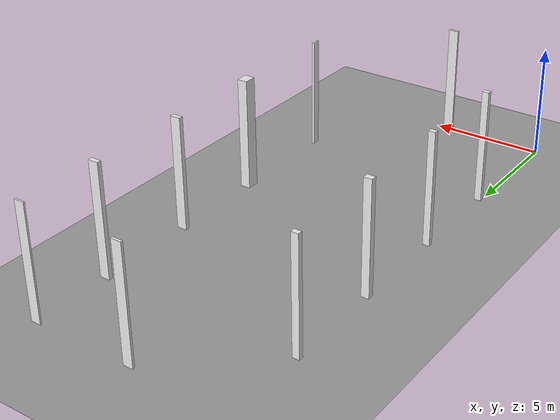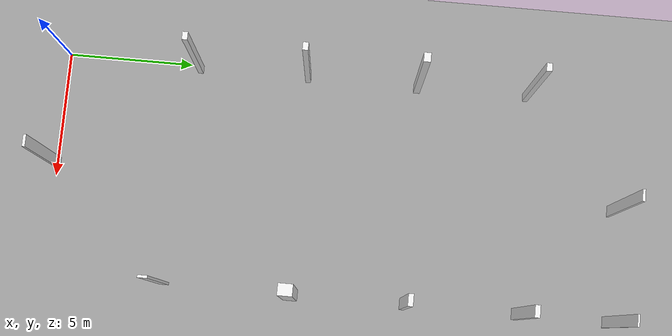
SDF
<sdf version="1.6">
 <world name="default">
  <physics name="default_physics" default="0" type="ode">
   <max_step_size>0.001</max_step_size>
   <real_time_factor>1</real_time_factor>
   <real_time_update_rate>1000.0</real_time_update_rate>
   <ode>
    <solver>
     <type>quick</type>
     <iters>150</iters>
     <sor>1.400000</sor>
     <use_dynamic_moi_rescaling>1</use_dynamic_moi_rescaling>
    </solver>
    <constraints>
     <cfm>0.00001</cfm>
     <erp>0.2</erp>
     <contact_max_correcting_vel>2000.000000</contact_max_correcting_vel>
     <contact_surface_layer>0.01000</contact_surface_layer>
    </constraints>
   </ode>
  </physics>
  <GUI name="default_gri" default="0" type="ode"><grid>45 1.0 0 0.0150</grid></GUI>
  <scene><shadows>true</shadows></scene>
  <light name="sun" type="directional">
   <pose>0 0 10000 0.4 0.2 0</pose>
   <diffuse>1 1 1 1</diffuse>
   <specular>0.6 0.6 0.6 1</specular>
   <direction>0.1 0.1 -0.9</direction>
   <attenuation>
    <range>20</range>
    <constant>0.5</constant>
    <linear>0.01</linear>
    <quadratic>0.001</quadratic>
   </attenuation>
  </light>
  <model name="ground_plane_0">
   <static>1</static>
   <link name="link">
    <collision name="collision">
     <geometry><plane><normal>0 0 1</normal><size>100 100</size></plane></geometry>
     <surface><friction><ode><mu>100</mu><mu2>50</mu2></ode></friction></surface>
    </collision>
    <visual name="visual">
     <cast_shadows>0</cast_shadows>
     <geometry><plane><normal>0 0 1</normal><size>100 100</size></plane></geometry>
     <material>
      <script><uri>file://media/materials/scripts/gazebo.material</uri><name>Gazebo/Grey</name></script>
     </material>
    </visual>
    <velocity_decay><linear>0</linear><angular>0</angular></velocity_decay>
   </link>
   <pose>0.497681 0 0 0 -0 0</pose>
  </model>
  <model name="columns"><include><pose>0 0 2 0 0.0 0</pose><uri>model://columns-laser</uri></include></model>
 </world>
</sdf>

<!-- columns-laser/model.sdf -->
<sdf version="1.6">
    <model name="columns">
        <static>true</static>

        <link name="column_1_hori">
            <pose>4.5 0.055 0.5 0 0 1.5707</pose>
            <static>true</static>
            <inertial>
                <mass>1.0</mass>
                <inertia>
                    <!-- inertias are tricky to compute -->
                    <ixx>1</ixx> <!-- for a box: ixx = 0.083 * mass * (y*y + z*z) -->
                    <ixy>0</ixy> <!-- for a box: ixy = 0 -->
                    <ixz>0</ixz> <!-- for a box: ixz = 0 -->
                    <iyy>1</iyy> <!-- for a box: iyy = 0.083 * mass * (x*x + z*z) -->
                    <iyz>0</iyz> <!-- for a box: iyz = 0 -->
                    <izz>1</izz> <!-- for a box: izz = 0.083 * mass * (x*x + y*y) -->
                </inertia>
            </inertial>
            <collision name="collision">
                <geometry>
                    <box>
                        <size>0.11 0.45 5</size>
                    </box>
                </geometry>
            </collision>
            <visual name="visual">
                <geometry>
                    <box>
                        <size>0.11 0.45 5</size>
                    </box>
                </geometry>
                <material>
                    <script>
                        <uri>file://usr/share/gazebo-11/media/materials/scripts/gazebo.material</uri>
                        <name>Gazebo/White</name>
                    </script>
                </material>
            </visual>
        </link>

        <link name="column_2_verti">
            <pose>8.95 4.82 0.5 0 0 0</pose> <!-- corrigir posicao y -->
            <static>true</static>
            <inertial>
                <mass>1.0</mass>
                <inertia>
                    <!-- inertias are tricky to compute -->
                    <ixx>1</ixx> <!-- for a box: ixx = 0.083 * mass * (y*y + z*z) -->
                    <ixy>0</ixy> <!-- for a box: ixy = 0 -->
                    <ixz>0</ixz> <!-- for a box: ixz = 0 -->
                    <iyy>1</iyy> <!-- for a box: iyy = 0.083 * mass * (x*x + z*z) -->
                    <iyz>0</iyz> <!-- for a box: iyz = 0 -->
                    <izz>1</izz> <!-- for a box: izz = 0.083 * mass * (x*x + y*y) -->
                </inertia>
            </inertial>
            <collision name="collision">
                <geometry>
                    <box>
                        <size>0.1 0.36 5</size>
                    </box>
                </geometry>
            </collision>
            <visual name="visual">
                <geometry>
                    <box>
                        <size>0.1 0.36 5</size>
                    </box>
                </geometry>
                <material>
                    <script>
                        <uri>file://usr/share/gazebo-11/media/materials/scripts/gazebo.material</uri>
                        <name>Gazebo/White</name>
                    </script>
                </material>
            </visual>
        </link>

        <link name="column_3_hori">
            <pose>8.9425 22.25 0.5 0 0 1.5707</pose>
            <static>true</static>
            <inertial>
                <mass>1.0</mass>
                <inertia>
                    <!-- inertias are tricky to compute -->
                    <ixx>1</ixx> <!-- for a box: ixx = 0.083 * mass * (y*y + z*z) -->
                    <ixy>0</ixy> <!-- for a box: ixy = 0 -->
                    <ixz>0</ixz> <!-- for a box: ixz = 0 -->
                    <iyy>1</iyy> <!-- for a box: iyy = 0.083 * mass * (x*x + z*z) -->
                    <iyz>0</iyz> <!-- for a box: iyz = 0 -->
                    <izz>1</izz> <!-- for a box: izz = 0.083 * mass * (x*x + y*y) -->
                </inertia>
            </inertial>
            <collision name="collision">
                <geometry>
                    <box>
                        <size>0.07 0.445 5</size>
                    </box>
                </geometry>
            </collision>
            <visual name="visual">
                <geometry>
                    <box>
                        <size>0.07 0.445 5</size>
                    </box>
                </geometry>
                <material>
                    <script>
                        <uri>file://usr/share/gazebo-11/media/materials/scripts/gazebo.material</uri>
                        <name>Gazebo/White</name>
                    </script>
                </material>
            </visual>
        </link>

        <link name="column_4_hori">
            <pose>4.5225 22.235 0.5 0 0 1.5707</pose>
            <static>true</static>
            <inertial>
                <mass>1.0</mass>
                <inertia>
                    <!-- inertias are tricky to compute -->
                    <ixx>1</ixx> <!-- for a box: ixx = 0.083 * mass * (y*y + z*z) -->
                    <ixy>0</ixy> <!-- for a box: ixy = 0 -->
                    <ixz>0</ixz> <!-- for a box: ixz = 0 -->
                    <iyy>1</iyy> <!-- for a box: iyy = 0.083 * mass * (x*x + z*z) -->
                    <iyz>0</iyz> <!-- for a box: iyz = 0 -->
                    <izz>1</izz> <!-- for a box: izz = 0.083 * mass * (x*x + y*y) -->
                </inertia>
            </inertial>
            <collision name="collision">
                <geometry>
                    <box>
                        <size>0.1 0.435 5</size>
                    </box>
                </geometry>
            </collision>
            <visual name="visual">
                <geometry>
                    <box>
                        <size>0.1 0.435 5</size>
                    </box>
                </geometry>
                <material>
                    <script>
                        <uri>file://usr/share/gazebo-11/media/materials/scripts/gazebo.material</uri>
                        <name>Gazebo/White</name>
                    </script>
                </material>
            </visual>
        </link>

        <link name="column_8_verti">
            <pose>0.15 5.3645 0.5 0 0 0</pose>
            <static>true</static>
            <inertial>
                <mass>1.0</mass>
                <inertia>
                    <!-- inertias are tricky to compute -->
                    <ixx>1</ixx> <!-- for a box: ixx = 0.083 * mass * (y*y + z*z) -->
                    <ixy>0</ixy> <!-- for a box: ixy = 0 -->
                    <ixz>0</ixz> <!-- for a box: ixz = 0 -->
                    <iyy>1</iyy> <!-- for a box: iyy = 0.083 * mass * (x*x + z*z) -->
                    <iyz>0</iyz> <!-- for a box: iyz = 0 -->
                    <izz>1</izz> <!-- for a box: izz = 0.083 * mass * (x*x + y*y) -->
                </inertia>
            </inertial>
            <collision name="collision">
                <geometry>
                    <box>
                        <size>0.3 0.205 5</size>
                    </box>
                </geometry>
            </collision>
            <visual name="visual">
                <geometry>
                    <box>
                        <size>0.3 0.205 5</size>
                    </box>
                </geometry>
                <material>
                    <script>
                        <uri>file://usr/share/gazebo-11/media/materials/scripts/gazebo.material</uri>
                        <name>Gazebo/White</name>
                    </script>
                </material>
            </visual>
        </link>

        <link name="column_7_verti">
            <pose>0.15 9.764 0.5 0 0 0</pose>
            <static>true</static>
            <inertial>
                <mass>1.0</mass>
                <inertia>
                    <!-- inertias are tricky to compute -->
                    <ixx>1</ixx> <!-- for a box: ixx = 0.083 * mass * (y*y + z*z) -->
                    <ixy>0</ixy> <!-- for a box: ixy = 0 -->
                    <ixz>0</ixz> <!-- for a box: ixz = 0 -->
                    <iyy>1</iyy> <!-- for a box: iyy = 0.083 * mass * (x*x + z*z) -->
                    <iyz>0</iyz> <!-- for a box: iyz = 0 -->
                    <izz>1</izz> <!-- for a box: izz = 0.083 * mass * (x*x + y*y) -->
                </inertia>
            </inertial>
            <collision name="collision">
                <geometry>
                    <box>
                        <size>0.3 0.21 5</size>
                    </box>
                </geometry>
            </collision>
            <visual name="visual">
                <geometry>
                    <box>
                        <size>0.3 0.21 5</size>
                    </box>
                </geometry>
                <material>
                    <script>
                        <uri>file://usr/share/gazebo-11/media/materials/scripts/gazebo.material</uri>
                        <name>Gazebo/White</name>
                    </script>
                </material>
            </visual>
        </link>

        <link name="column_6_verti">
            <pose>0.175 14.202 0.5 0 0 0</pose>
            <static>true</static>
            <inertial>
                <mass>1.0</mass>
                <inertia>
                    <!-- inertias are tricky to compute -->
                    <ixx>1</ixx> <!-- for a box: ixx = 0.083 * mass * (y*y + z*z) -->
                    <ixy>0</ixy> <!-- for a box: ixy = 0 -->
                    <ixz>0</ixz> <!-- for a box: ixz = 0 -->
                    <iyy>1</iyy> <!-- for a box: iyy = 0.083 * mass * (x*x + z*z) -->
                    <iyz>0</iyz> <!-- for a box: iyz = 0 -->
                    <izz>1</izz> <!-- for a box: izz = 0.083 * mass * (x*x + y*y) -->
                </inertia>
            </inertial>
            <collision name="collision">
                <geometry>
                    <box>
                        <size>0.35 0.26 5</size>
                    </box>
                </geometry>
            </collision>
            <visual name="visual">
                <geometry>
                    <box>
                        <size>0.35 0.26 5</size>
                    </box>
                </geometry>
                <material>
                    <script>
                        <uri>file://usr/share/gazebo-11/media/materials/scripts/gazebo.material</uri>
                        <name>Gazebo/White</name>
                    </script>
                </material>
            </visual>
        </link>

        <link name="column_5_verti">
            <pose>0.1525 18.6245 0.5 0 0 0</pose>
            <static>true</static>
            <inertial>
                <mass>1.0</mass>
                <inertia>
                    <!-- inertias are tricky to compute -->
                    <ixx>1</ixx> <!-- for a box: ixx = 0.083 * mass * (y*y + z*z) -->
                    <ixy>0</ixy> <!-- for a box: ixy = 0 -->
                    <ixz>0</ixz> <!-- for a box: ixz = 0 -->
                    <iyy>1</iyy> <!-- for a box: iyy = 0.083 * mass * (x*x + z*z) -->
                    <iyz>0</iyz> <!-- for a box: iyz = 0 -->
                    <izz>1</izz> <!-- for a box: izz = 0.083 * mass * (x*x + y*y) -->
                </inertia>
            </inertial>
            <collision name="collision">
                <geometry>
                    <box>
                        <size>0.305 0.205 5</size>
                    </box>
                </geometry>
            </collision>
            <visual name="visual">
                <geometry>
                    <box>
                        <size>0.305 0.205 5</size>
                    </box>
                </geometry>
                <material>
                    <script>
                        <uri>file://usr/share/gazebo-11/media/materials/scripts/gazebo.material</uri>
                        <name>Gazebo/White</name>
                    </script>
                </material>
            </visual>
        </link>

        <link name="obj8">
            <pose>8.936 18.72 0.5 0 0 0</pose>
            <static>true</static>
            <inertial>
                <mass>1.0</mass>
                <inertia>
                    <!-- inertias are tricky to compute -->
                    <ixx>1</ixx> <!-- for a box: ixx = 0.083 * mass * (y*y + z*z) -->
                    <ixy>0</ixy> <!-- for a box: ixy = 0 -->
                    <ixz>0</ixz> <!-- for a box: ixz = 0 -->
                    <iyy>1</iyy> <!-- for a box: iyy = 0.083 * mass * (x*x + z*z) -->
                    <iyz>0</iyz> <!-- for a box: iyz = 0 -->
                    <izz>1</izz> <!-- for a box: izz = 0.083 * mass * (x*x + y*y) -->
                </inertia>
            </inertial>
            <collision name="collision">
                <geometry>
                    <box>
                        <size>0.45 0.19 5</size>
                    </box>
                </geometry>
            </collision>
            <visual name="visual">
                <geometry>
                    <box>
                        <size>0.45 0.19 5</size>
                    </box>
                </geometry>
                <material>
                    <script>
                        <uri>file://usr/share/gazebo-11/media/materials/scripts/gazebo.material</uri>
                        <name>Gazebo/White</name>
                    </script>
                </material>
            </visual>
        </link>

        <link name="obj9">
            <pose>8.936 14.275 0.5 0 0 0</pose>
            <static>true</static>
            <inertial>
                <mass>1.0</mass>
                <inertia>
                    <!-- inertias are tricky to compute -->
                    <ixx>1</ixx> <!-- for a box: ixx = 0.083 * mass * (y*y + z*z) -->
                    <ixy>0</ixy> <!-- for a box: ixy = 0 -->
                    <ixz>0</ixz> <!-- for a box: ixz = 0 -->
                    <iyy>1</iyy> <!-- for a box: iyy = 0.083 * mass * (x*x + z*z) -->
                    <iyz>0</iyz> <!-- for a box: iyz = 0 -->
                    <izz>1</izz> <!-- for a box: izz = 0.083 * mass * (x*x + y*y) -->
                </inertia>
            </inertial>
            <collision name="collision">
                <geometry>
                    <box>
                        <size>0.45 0.19 5</size>
                    </box>
                </geometry>
            </collision>
            <visual name="visual">
                <geometry>
                    <box>
                        <size>0.45 0.19 5</size>
                    </box>
                </geometry>
                <material>
                    <script>
                        <uri>file://usr/share/gazebo-11/media/materials/scripts/gazebo.material</uri>
                        <name>Gazebo/White</name>
                    </script>
                </material>
            </visual>
        </link>

        <link name="obj10">
            <pose>8.9695 9.8545 0.5 0 0 0</pose>
            <static>true</static>
            <inertial>
                <mass>1.0</mass>
                <inertia>
                    <!-- inertias are tricky to compute -->
                    <ixx>1</ixx> <!-- for a box: ixx = 0.083 * mass * (y*y + z*z) -->
                    <ixy>0</ixy> <!-- for a box: ixy = 0 -->
                    <ixz>0</ixz> <!-- for a box: ixz = 0 -->
                    <iyy>1</iyy> <!-- for a box: iyy = 0.083 * mass * (x*x + z*z) -->
                    <iyz>0</iyz> <!-- for a box: iyz = 0 -->
                    <izz>1</izz> <!-- for a box: izz = 0.083 * mass * (x*x + y*y) -->
                </inertia>
            </inertial>
            <collision name="collision">
                <geometry>
                    <box>
                        <size>0.445 0.545 5</size>
                    </box>
                </geometry>
            </collision>
            <visual name="visual">
                <geometry>
                    <box>
                        <size>0.445 0.545 5</size>
                    </box>
                </geometry>
                <material>
                    <script>
                        <uri>file://usr/share/gazebo-11/media/materials/scripts/gazebo.material</uri>
                        <name>Gazebo/White</name>
                    </script>
                </material>
            </visual>
        </link>
    </model>
</sdf>
